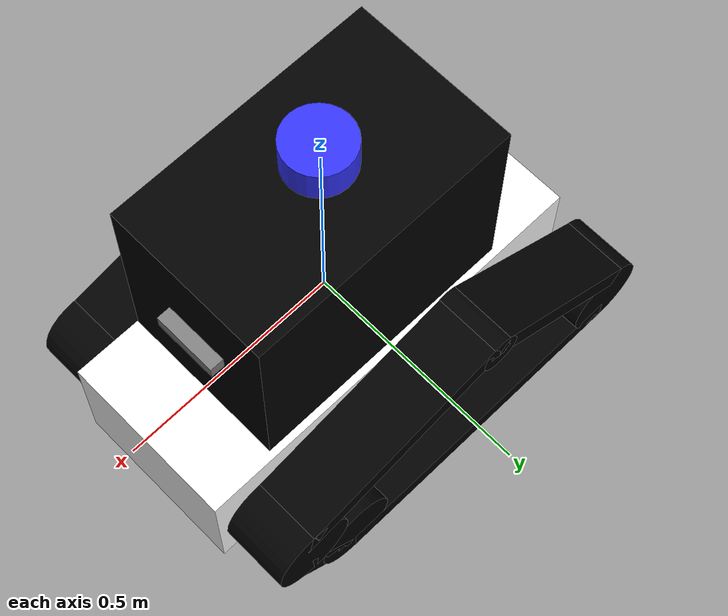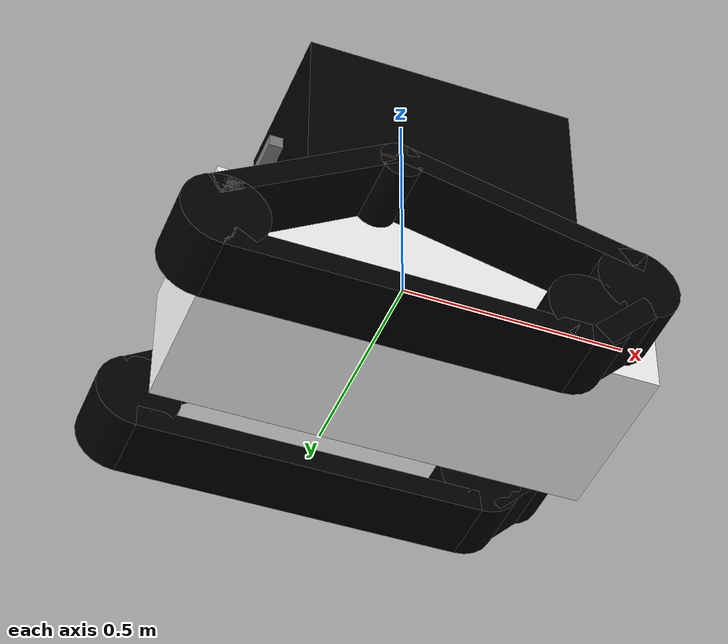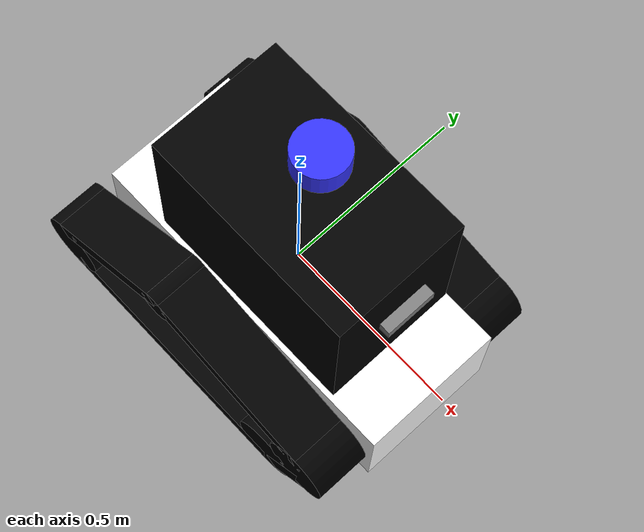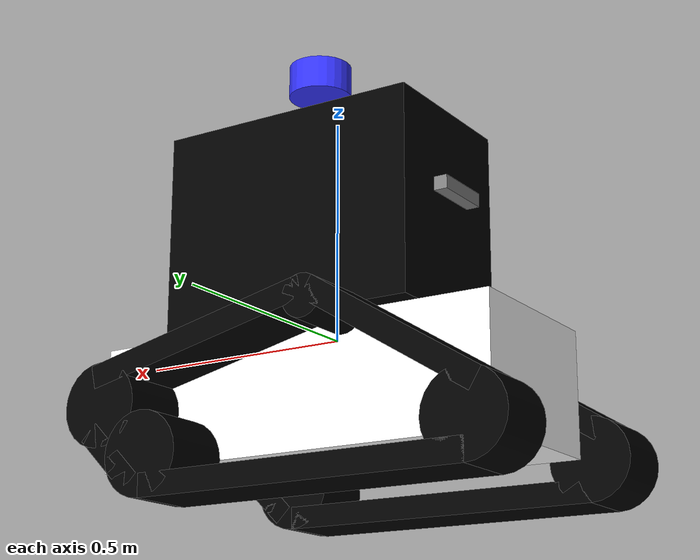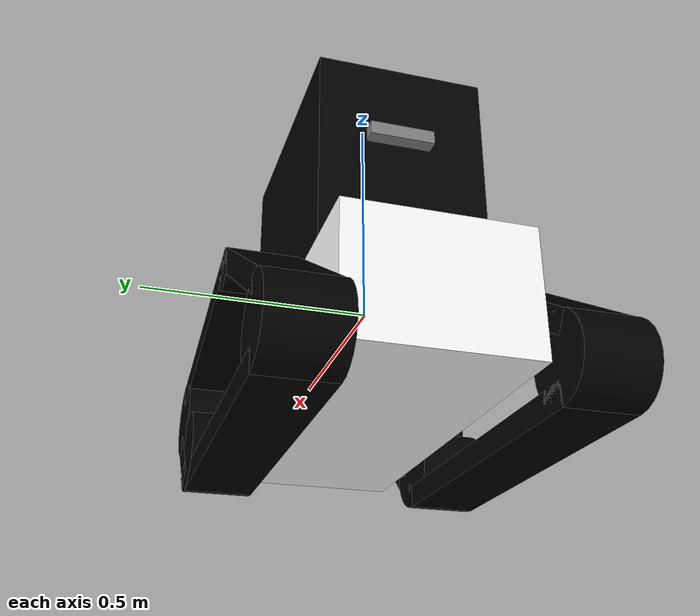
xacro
<?xml version="1.0"?>
<robot xmlns:xacro="http://www.ros.org/wiki/xacro"  name="jo">

    <xacro:include filename="robot_core.xacro" />
    <xacro:include filename="track.xacro" />

    <xacro:track side="left"/>
    <xacro:track side="right"/>

    <xacro:include filename="velodyne.xacro" />
    <xacro:include filename="front_depth.xacro" />
    <xacro:include filename="back_depth.xacro" />
    <xacro:include filename="imu.xacro" />

    <!-- TrackedVehicle instantiation; the track links need to be instantiated separately -->
    <gazebo>
        <plugin filename="gz-sim-tracked-vehicle-system"
                name="gz::sim::systems::TrackedVehicle">

            <!-- Left track links -->
            <left_track>
                <link>left_bottom_belt</link>
            </left_track>
            <left_track>
                <link>front_left_roller</link>
            </left_track>
            <left_track>
                <link>back_left_roller</link>
            </left_track>
            <left_track>
                <link>left_front_bottom_belt</link>
            </left_track>
            <!-- Right track links -->
            <right_track>
                <link>right_bottom_belt</link>
            </right_track>
            <right_track>
                <link>back_right_roller</link>
            </right_track>
            <right_track>
                <link>front_right_roller</link>
            </right_track>
            <right_track>
                <link>right_front_bottom_belt</link>
            </right_track>

            <!-- ODOMETRY SEEMS TO NOT WORK FINE -->
            <!-- Distance between track centerlines -->
            <tracks_separation>${chassis_width}</tracks_separation>
            <!-- Used for odometry moment-arm calculation -->
            <track_height>${back_roller_radius*2}</track_height>
            <steering_efficiency>0.5</steering_efficiency>
            <linear_velocity>
                <max_velocity>2.0</max_velocity>
                <max_acceleration>5.0</max_acceleration>
            </linear_velocity>
            <angular_velocity>
                <max_velocity>1.5</max_velocity>
                <max_acceleration>2.5</max_acceleration>
            </angular_velocity>
            <frame_id>odom</frame_id>
            <child_frame_id>base_link</child_frame_id>
            <odom_publish_frequency>50</odom_publish_frequency>
        </plugin>
    </gazebo>

</robot>

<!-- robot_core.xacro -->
<robot xmlns:xacro="http://www.ros.org/wiki/xacro">

    <xacro:include filename="inertial_macros.xacro"/>

    <xacro:property name="chassis_length" value="0.94"/>
    <xacro:property name="chassis_width" value="0.39"/>
    <xacro:property name="chassis_height" value="0.273"/>
    <xacro:property name="chassis_mass" value="140.0"/>

    <xacro:property name="front_chassis2rack" value="0.15"/>

    <xacro:property name="rack_length" value="0.6"/>
    <xacro:property name="rack_width" value="0.37"/>
    <xacro:property name="rack_height" value="0.45"/>
    <xacro:property name="rack_mass" value="0.0"/>

    <!-- Lateral offset: center of track from robot centerline -->
    <xacro:property name="track_offset_y" value="${chassis_width/2 + track_width/2}"/>
    <!-- Z: bottom of chassis minus half track height = track center sits at ground level -->
    <xacro:property name="track_offset_z" value="${-chassis_height/2 - track_height/2}"/>

    <!-- Rack -->
    <xacro:property name="rack_mass" value="0.1"/>

    <material name="white">  <color rgba="1 1 1 1"/>         </material>
    <material name="orange"> <color rgba="1 0.3 0.1 1"/>     </material>
    <material name="blue">   <color rgba="0.2 0.2 1 1"/>     </material>
    <material name="black">  <color rgba="0 0 0 1"/>         </material>
    <material name="black_t"><color rgba="0 0 0 0.9"/>       </material>
    <material name="red">    <color rgba="1 0 0 1"/>         </material>
    <material name="gray">    <color rgba="0.5 0.5 0.5 1"/>         </material>

    <!-- ═══════════════════════════════════════════
         BASE LINK
    ═══════════════════════════════════════════ -->
    <link name="base_link"/>

    <joint name="base_footprint_joint" type="fixed">
        <parent link="base_link"/>
        <child link="base_footprint"/>
        <origin xyz="0 0 ${-chassis_height - 0.1}" rpy="0 0 0"/>
    </joint>
    <link name="base_footprint"/>

    <!-- ═══════════════════════════════════════════
         CHASSIS
    ═══════════════════════════════════════════ -->
    <joint name="chassis_joint" type="fixed">
        <parent link="base_link"/>
        <child link="chassis"/>
        <origin xyz="${-chassis_length/2} 0 0"/>
    </joint>

    <link name="chassis">
        <visual>
            <origin xyz="${chassis_length/2} 0 ${-chassis_height/2}"/>
            <geometry>
                <box size="${chassis_length} ${chassis_width} ${chassis_height}"/>
            </geometry>
            <material name="white"/>
        </visual>
        <collision>
            <origin xyz="${chassis_length/2} 0 ${-chassis_height/2}"/>
            <geometry>
                <box size="${chassis_length} ${chassis_width} ${chassis_height}"/>
            </geometry>
        </collision>
        <xacro:inertial_box mass="${chassis_mass}"
                            x="${chassis_length}" y="${chassis_width}" z="${chassis_height}">
            <origin xyz="${chassis_length/2} 0 ${-chassis_height/2}" rpy="0 0 0"/>
        </xacro:inertial_box>
    </link>
    <gazebo reference="chassis">
        <material>Gazebo/White</material>
    </gazebo>

    <!-- ═══════════════════════════════════════════
         RACK
    ═══════════════════════════════════════════ -->
    <joint name="base2rack" type="fixed">
        <parent link="base_link"/>
        <child link="rack"/>
        <origin xyz="${-rack_length/2 - front_chassis2rack + chassis_length/2} 0 ${rack_height/2 + 0.02}"/>
    </joint>

    <link name="rack">
        <visual>
            <origin xyz="0 0 0"/>
            <geometry>
                <box size="${rack_length} ${rack_width} ${rack_height}"/>
            </geometry>
            <material name="black_t"/>
        </visual>
        <collision>
            <origin xyz="0 0 0"/>
            <geometry>
                <box size="${rack_length} ${rack_width} ${rack_height}"/>
            </geometry>
        </collision>
        <xacro:inertial_box mass="${rack_mass}"
                            x="${rack_length}" y="${rack_width}" z="${rack_height}">
            <origin xyz="0 0 0" rpy="0 0 0"/>
        </xacro:inertial_box>
    </link>

</robot>

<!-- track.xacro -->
<robot xmlns:xacro="http://ros.org/wiki/xacro">

    <xacro:property name="PI" value="3.141592" />
    <xacro:property name="track_width" value="0.15" />
    <xacro:property name="front_roller_radius" value="0.09" />
    <xacro:property name="front_upper_roller_radius" value="0.09" />
    <xacro:property name="upper_roller_radius" value="0.045" />
    <xacro:property name="back_roller_radius" value="0.09" />
    <xacro:property name="back2front_length" value="0.74" />
    <xacro:property name="front2upper_roller_length" value="0.16" />
    <xacro:property name="belt_thickness" value="0.05" />
    <xacro:property name="back2top_roller_x" value="0.35" />
    <xacro:property name="back2top_roller_y" value="0.27" />
    <xacro:property name="back2top_length" value="0.43" />
    <xacro:property name="top2front_upper_length" value="0.53" />
    <xacro:property name="back_roller2chassis" value="0.11" />

    <xacro:macro name="track" params="side">

        <link name="back_${side}_roller">
            <visual>
                <origin xyz="0 0 0" rpy="${-pi/2} ${-pi/2} 0"/>
                <geometry>
                    <cylinder radius="${back_roller_radius}" length="${track_width}"/>
                </geometry>
                <material name="black"/>
            </visual>
            <collision>
                <origin xyz="0 0 0" rpy="${-pi/2} ${-pi/2} 0"/>
                <geometry>
                    <cylinder radius="${back_roller_radius}" length="${track_width}"/>
                </geometry>
                <material name="orange"/>
            </collision>
            <xacro:inertial_cylinder mass="0.01" radius="${back_roller_radius}" length="${track_width}">
                    <origin xyz="0 0 0" rpy="${-pi/2} ${-pi/2} 0"/>
            </xacro:inertial_cylinder>
        </link>

        <joint name="base2back_${side}_roller" type="fixed">
            <parent link="base_link"/>
            <child link="back_${side}_roller"/>
            <origin xyz="${-chassis_length/2 - back_roller2chassis + back_roller_radius} ${(track_width/2 + chassis_width/2) * (1 if side == 'left' else -1)} ${-chassis_height}" rpy="${pi/2} ${pi/2} ${pi/2}" />
        </joint>

        <link name="front_${side}_roller">
            <visual>
                <origin xyz="0 0 0" rpy="${-pi/2} 0 0"/>
                <geometry>
                    <cylinder radius="${front_roller_radius}" length="${track_width}"/>
                </geometry>
                <material name="black"/>
            </visual>
            <collision>
                <origin xyz="0 0 0" rpy="${-pi/2} 0 0"/>
                <geometry>
                    <cylinder radius="${front_roller_radius}" length="${track_width}"/>
                </geometry>
                <material name="orange"/>
            </collision>
            <xacro:inertial_cylinder mass="0.01" radius="${front_roller_radius}" length="${track_width}">
                    <origin xyz="0 0 0" rpy="${-pi/2} 0 0"/>
            </xacro:inertial_cylinder>
        </link>

        <joint name="back_${side}_roller2front_${side}_roller" type="fixed">
            <parent link="back_${side}_roller"/>
            <child link="front_${side}_roller"/>
            <origin xyz="0.0 0.0 ${back2front_length}" rpy="0 0 0" />
        </joint>

        <link name="front_${side}_upper_roller">
            <visual>
                <origin xyz="0 0 0" rpy="${-pi/2} ${-pi/4 - pi/3 - 17.7*pi/180} 0"/>
                <geometry>
                    <cylinder radius="${front_upper_roller_radius}" length="${track_width}"/>
                </geometry>
                <material name="black"/>
            </visual>
            <collision>
                <origin xyz="0 0 0" rpy="${-pi/2} ${-pi/4 - pi/3 - 17.7*pi/180} 0"/>
                <geometry>
                    <cylinder radius="${front_upper_roller_radius}" length="${track_width}"/>
                </geometry>
                <material name="orange"/>
            </collision>
        </link>

        <joint name="front_${side}_roller2front_${side}_upper_roller" type="fixed">
            <parent link="front_${side}_roller"/>
            <child link="front_${side}_upper_roller"/>
            <origin xyz="${-front2upper_roller_length * 0.7} 0.0 ${front2upper_roller_length * 0.7}" rpy="0 ${pi/4 + pi/3 + 17.7*pi/180} 0" />
        </joint>

        <link name="${side}_bottom_belt">
            <visual>
                <geometry>
                    <box size="${belt_thickness} ${track_width} ${back2front_length}"/>
                </geometry>
                <material name="black"/>
            </visual>
            <collision>
                <geometry>
                    <box size="${belt_thickness} ${track_width} ${back2front_length}"/>
                </geometry>
                <material name="orange"/>
            </collision>
            <xacro:inertial_box mass="0.01" x="${belt_thickness}" y="${track_width}" z="${back2front_length}">
                    <origin xyz="0 0 0" rpy="0 0 0"/>
            </xacro:inertial_box>
        </link>

        <joint name="back_${side}_roller2${side}_bottom_belt" type="fixed">
            <parent link="back_${side}_roller"/>
            <child link="${side}_bottom_belt"/>
            <origin xyz="0.065 0 ${back2front_length/2}" rpy="0 0 0" />
        </joint>

        <link name="${side}_front_bottom_belt">
            <visual>
                <origin xyz="0 0 0" rpy="0 ${-pi/4} 0"/>
                <geometry>
                    <box size="${belt_thickness} ${track_width} ${front2upper_roller_length}"/>
                </geometry>
                <material name="black"/>
            </visual>
            <collision>
                <origin xyz="0 0 0" rpy="0 ${-pi/4} 0"/>
                <geometry>
                    <box size="${belt_thickness} ${track_width} ${front2upper_roller_length}"/>
                </geometry>
                <material name="orange"/>
            </collision>
            <xacro:inertial_box mass="0.01" x="${belt_thickness}" y="${track_width}" z="${front2upper_roller_length}">
                    <origin xyz="0 0 0" rpy="0 ${-pi/4} 0"/>
            </xacro:inertial_box>
        </link>

        <joint name="back_${side}_roller2${side}_front_bottom_belt" type="fixed">
            <parent link="front_${side}_roller"/>
            <child link="${side}_front_bottom_belt"/>
            <origin xyz="0.0 0.0 ${front2upper_roller_length/2}" rpy="0 0 0" />
        </joint>

        <link name="${side}_top_roller">
            <visual>
                <origin xyz="0 0 0" rpy="${-pi/2} ${pi/6 + 2*pi/180} 0"/>
                <geometry>
                    <cylinder radius="${upper_roller_radius}" length="${track_width}"/>
                </geometry>
                <material name="black"/>
            </visual>
            <collision>
                <origin xyz="0 0 0" rpy="${-pi/2} ${pi/6 + 2*pi/180} 0"/>
                <geometry>
                    <cylinder radius="${upper_roller_radius}" length="${track_width}"/>
                </geometry>
                <material name="orange"/>
            </collision>
        </link>

        <joint name="back_${side}_roller2${side}_top_roller" type="fixed">
            <parent link="back_${side}_roller"/>
            <child link="${side}_top_roller"/>
            <origin xyz="${-back2top_roller_y} 0 ${back2top_roller_x}" rpy="0 ${-pi/6 - 2*pi/180} 0" />
        </joint>

        <link name="${side}_back_top_belt">
            <visual>
                <geometry>
                    <box size="${belt_thickness} ${track_width} ${back2top_length}"/>
                </geometry>
                <material name="black"/>
            </visual>
            <collision>
                <geometry>
                    <box size="${belt_thickness} ${track_width} ${back2top_length}"/>
                </geometry>
                <material name="orange"/>
            </collision>
        </link>

        <joint name="${side}_top_roller2${side}_back_top_belt" type="fixed">
            <parent link="${side}_top_roller"/>
            <child link="${side}_back_top_belt"/>
            <origin xyz="-0.02 0.0 ${-back2top_length/2}" rpy="0 0 0" />
        </joint>

        <link name="${side}_front_top_belt">
            <visual>
                <geometry>
                    <box size="${top2front_upper_length} ${track_width} ${belt_thickness}"/>
                </geometry>
                <material name="black"/>
            </visual>
            <collision>
                <geometry>
                    <box size="${top2front_upper_length} ${track_width} ${belt_thickness}"/>
                </geometry>
                <material name="orange"/>
            </collision>
        </link>

        <joint name="front_${side}_upper_roller2${side}_front_top_belt" type="fixed">
            <parent link="front_${side}_upper_roller"/>
            <child link="${side}_front_top_belt"/>
            <origin xyz="${top2front_upper_length/2} 0.0 ${belt_thickness/2 + 0.005}" rpy="0 ${-pi/9} 0" />
        </joint>

        <gazebo reference="base2back_${side}_roller">
            <preserveFixedJoint>true</preserveFixedJoint>
        </gazebo>

        <gazebo>
            <plugin filename="gz-sim-track-controller-system"
                    name="gz::sim::systems::TrackController">
                <link>back_${side}_roller</link>
                <debug>0</debug>
            </plugin>
        </gazebo>

        <gazebo reference="back_${side}_roller">
            <self_collide>false</self_collide>
        </gazebo>

        <gazebo reference="back_${side}_roller2front_${side}_roller">
            <preserveFixedJoint>true</preserveFixedJoint>
        </gazebo>

        <gazebo>
            <plugin filename="gz-sim-track-controller-system"
                    name="gz::sim::systems::TrackController">
                <link>front_${side}_roller</link>
                <debug>0</debug>
            </plugin>
        </gazebo>

        <gazebo reference="front_${side}_roller">
            <self_collide>false</self_collide>
        </gazebo>

        <gazebo reference="back_${side}_roller2${side}_bottom_belt">
            <preserveFixedJoint>true</preserveFixedJoint>
        </gazebo>

        <gazebo>
            <plugin filename="gz-sim-track-controller-system"
                    name="gz::sim::systems::TrackController">
                <link>${side}_bottom_belt</link>
                <debug>0</debug>
            </plugin>
        </gazebo>

        <gazebo reference="${side}_bottom_belt">
            <self_collide>false</self_collide>
        </gazebo>

        <gazebo reference="back_${side}_roller2${side}_front_bottom_belt">
            <preserveFixedJoint>true</preserveFixedJoint>
        </gazebo>

        <gazebo>
            <plugin filename="gz-sim-track-controller-system"
                    name="gz::sim::systems::TrackController">
                <link>${side}_front_bottom_belt</link>
                <debug>0</debug>
            </plugin>
        </gazebo>

        <gazebo reference="${side}_front_bottom_belt">
            <self_collide>false</self_collide>
        </gazebo>

    </xacro:macro>

</robot>

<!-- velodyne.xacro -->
<robot xmlns:xacro="http://ros.org/wiki/xacro">

    <xacro:property name="PI" value="3.141592" />

    <xacro:property name="b2l_x" value="0.03" />
    <xacro:property name="b2l_y" value="0.0286" />
    <xacro:property name="b2l_z" value="0.564" />
    <xacro:property name="b2l_R" value="0.0" />
    <xacro:property name="b2l_P" value="0.0" />
    <xacro:property name="b2l_Y" value="0.0" />
    <xacro:property name="lidar_mass" value="0.125" />
    <xacro:property name="lidar_len_rad" value="0.07" />
    <xacro:property name="lidar_len_h" value="0.072" />
    <xacro:include filename="$(find jo_description)/urdf/inertial_macros.xacro" />

    <xacro:macro name="lidar_sensor" params="namespace">
        <joint name="base2lidar" type="fixed">
            <parent link="base_link"/>
            <child link="velodyne"/>
            <origin xyz="${b2l_x} ${b2l_y} ${b2l_z + lidar_len_h/2}" rpy="${b2l_R} ${b2l_P} ${b2l_Y}"/>
        </joint>
        <link name="velodyne">
            <collision>
                <origin xyz="0 0 0" rpy="0 0 0"/>
                <geometry>
                    <cylinder radius="${lidar_len_rad}" length="${lidar_len_h}"/>
                </geometry>
            </collision>

            <visual>
                <origin xyz="0 0 0" rpy="0 0 0"/>
                <geometry>
                    <cylinder radius="${lidar_len_rad}" length="${lidar_len_h}"/>
                </geometry>
                <material name="blue"/>
            </visual>

            <xacro:inertial_cylinder mass="${lidar_mass}" radius="${lidar_len_rad}" length="${lidar_len_h}">
                    <origin xyz="0 0 0" rpy="0 0 0"/>
            </xacro:inertial_cylinder>

        </link>
        <gazebo reference="velodyne">
            <sensor name="RGLsensor" type="custom">
                <plugin filename="RGLServerPluginInstance" name="rgl::RGLServerPluginInstance">
                    <range>
                    <min>0.1</min>
                    <max>100</max>
                    </range>
                    <update_rate>10</update_rate>
                    <update_on_paused_sim>false</update_on_paused_sim>
                    <topic>${namespace}/velodyne_points</topic>
                    <frame>velodyne</frame>
                    <pattern_preset>Puck</pattern_preset>
                </plugin>
            </sensor>
        </gazebo>

    </xacro:macro>

    <xacro:lidar_sensor namespace=""/>

</robot>

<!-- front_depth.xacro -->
<robot xmlns:xacro="http://ros.org/wiki/xacro">

    <xacro:property name="PI" value="3.141592" />

    <xacro:property name="b2c_x" value="-0.30639" />
    <xacro:property name="b2c_y" value="0.01414" />
    <xacro:property name="b2c_z" value="0.27801" />
    <xacro:property name="b2c_R" value="0.0" />
    <xacro:property name="b2c_P" value="0.0" />
    <xacro:property name="b2c_Y" value="0.0" />
    <xacro:property name="camera_mass" value="0.125" />
    <xacro:property name="camera_height" value="0.03" />
    <xacro:property name="camera_len" value="0.14" />
    <xacro:property name="camera_depth" value="0.03" />
    <xacro:include filename="$(find jo_description)/urdf/inertial_macros.xacro" />

    <xacro:macro name="front_depth" params="namespace">
        <joint name="base2front_camera" type="fixed">
            <parent link="base_link"/>
            <child link="front_camera_link"/>
            <origin xyz="${-b2c_x + 0.03} ${b2c_y} ${b2c_z}" rpy="${b2c_R} ${b2c_P} ${b2c_Y}"/>
        </joint>
        <link name="front_camera_link">

            <visual>
                <origin xyz="0 0 0" rpy="0 ${PI/2} 0"/>
                <geometry>
                    <box size="${camera_depth} ${camera_len} ${camera_height}"/>
                </geometry>
                <material name="gray"/>
            </visual>

            <collision>
                <origin xyz="0 0 0" rpy="0 ${PI/2} 0"/>
                <geometry>
                    <box size="${camera_depth} ${camera_len} ${camera_height}"/>
                </geometry>
            </collision>

            <xacro:inertial_box mass="${camera_mass}" x="${camera_depth}" y="${camera_len}" z="${camera_height}">
                    <origin xyz="0 0 0" rpy="0 ${PI/2} 0"/>
            </xacro:inertial_box>

        </link>
        <gazebo reference="front_camera_link">
            <sensor name="front_d455" type="rgbd_camera">
                <gz_frame_id>front_camera_link</gz_frame_id>
                <always_on>true</always_on>
                <update_rate>30</update_rate>
                <visualize>true</visualize>

                <!-- RGB camera -->
                <camera name="color">
                <horizontal_fov>1.50</horizontal_fov>  <!-- ≈86 deg -->
                <image>
                    <width>640</width>
                    <height>480</height>
                    <format>R8G8B8</format>
                </image>
                <clip>
                    <near>0.1</near>
                    <far>20</far>
                </clip>
                </camera>

                <!-- Depth -->
                <depth_camera>
                <clip>
                    <near>0.35</near>
                    <far>8.0</far>
                </clip>

                </depth_camera>

                <topic>front_camera</topic>
            </sensor>
            </gazebo>

    </xacro:macro>

    <xacro:front_depth namespace=""/>

</robot>

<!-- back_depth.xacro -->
<robot xmlns:xacro="http://ros.org/wiki/xacro">

    <xacro:property name="PI" value="3.141592" />

    <xacro:property name="b2c_x" value="-0.30639" />
    <xacro:property name="b2c_y" value="0.01414" />
    <xacro:property name="b2c_z" value="0.27801" />
    <xacro:property name="b2c_R" value="0.0" />
    <xacro:property name="b2c_P" value="0.0" />
    <xacro:property name="b2c_Y" value="${PI}" />
    <xacro:property name="camera_mass" value="0.125" />
    <xacro:property name="camera_height" value="0.03" />
    <xacro:property name="camera_len" value="0.14" />
    <xacro:property name="camera_depth" value="0.03" />
    <xacro:include filename="$(find jo_description)/urdf/inertial_macros.xacro" />

    <xacro:macro name="back_depth" params="namespace">
        <joint name="base2back_camera" type="fixed">
            <parent link="base_link"/>
            <child link="back_camera_link"/>
            <origin xyz="${b2c_x} ${b2c_y} ${b2c_z}" rpy="${b2c_R} ${b2c_P} ${b2c_Y}"/>
        </joint>
        <link name="back_camera_link">

            <visual>
                <origin xyz="0 0 0" rpy="0 ${PI/2} 0"/>
                <geometry>
                    <box size="${camera_depth} ${camera_len} ${camera_height}"/>
                </geometry>
                <material name="gray"/>
            </visual>

            <collision>
                <origin xyz="0 0 0" rpy="0 ${PI/2} 0"/>
                <geometry>
                    <box size="${camera_depth} ${camera_len} ${camera_height}"/>
                </geometry>
            </collision>

            <xacro:inertial_box mass="${camera_mass}" x="${camera_depth}" y="${camera_len}" z="${camera_height}">
                    <origin xyz="0 0 0" rpy="0 ${PI/2} 0"/>
            </xacro:inertial_box>

        </link>
        <gazebo reference="back_camera_link">
            <sensor name="back_d455" type="rgbd_camera">
                <gz_frame_id>back_camera_link</gz_frame_id>
                <always_on>true</always_on>
                <update_rate>30</update_rate>
                <visualize>true</visualize>

                <!-- RGB camera -->
                <camera name="color">
                <horizontal_fov>1.50</horizontal_fov>  <!-- ≈86 deg -->
                <image>
                    <width>640</width>
                    <height>480</height>
                    <format>R8G8B8</format>
                </image>
                <clip>
                    <near>0.1</near>
                    <far>20</far>
                </clip>
                </camera>

                <!-- Depth -->
                <depth_camera>
                <clip>
                    <near>0.35</near>
                    <far>8.0</far>
                </clip>

                </depth_camera>

                <topic>back_camera</topic>
            </sensor>
            </gazebo>

    </xacro:macro>

    <xacro:back_depth namespace=""/>

</robot>

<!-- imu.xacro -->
<robot xmlns:xacro="http://ros.org/wiki/xacro">

    <xacro:property name="PI" value="3.141592" />
    <xacro:property name="b2i_x" value="0.22172" />
    <xacro:property name="b2i_y" value="0.02606" />
    <xacro:property name="b2i_z" value="0.28202" />
    <xacro:property name="b2i_R" value="0.0" />
    <xacro:property name="b2i_P" value="0.0" />
    <xacro:property name="b2i_Y" value="0.0" />
    <xacro:property name="imu_mass" value="0.01" />
    <xacro:property name="imu_len_x" value="0.05" />
    <xacro:property name="imu_len_y" value="0.05" />
    <xacro:property name="imu_len_z" value="0.05" />

    <xacro:include filename="$(find jo_description)/urdf/inertial_macros.xacro" />

    <xacro:macro name="imu_sensor" params="">
        <joint name="base2imu" type="fixed">
            <parent link="base_link"/>
            <child link="imu_link"/>
            <origin xyz="${b2i_x} ${b2i_y} ${b2i_z}" rpy="${b2i_R} ${b2i_P} ${b2i_Y}"/>
        </joint>
        <link name="imu_link">
            <visual>
                <geometry>
                    <box size="${imu_len_x} ${imu_len_y} ${imu_len_z}"/>
                </geometry>
                <material name="orange"/>

            </visual>

            <collision>
                <geometry>
                    <box size="${imu_len_x} ${imu_len_y} ${imu_len_z}"/>
                </geometry>
            </collision>

            <xacro:inertial_box mass="${imu_mass}" x="${imu_len_x}" y="${imu_len_y}" z="${imu_len_z}">
                    <origin xyz="0 0 0" rpy="0 0 0"/>
            </xacro:inertial_box>

        </link>
        <gazebo reference="imu_link">
            <sensor name="imu_sensor" type="imu">
                    <gz_frame_id>imu_link</gz_frame_id>
                    <always_on>1</always_on>
                    <update_rate>200</update_rate>
                    <visualize>true</visualize>
                    <topic>imu</topic>
                    <plugin filename="gz-sim-imu-system"
                            name="gz::sim::systems::Imu">
                    </plugin>

                    <imu>
                        <angular_velocity>
                            <x>
                                <noise type="gaussian">
                                <mean>0.0</mean>
                                <stddev>2e-4</stddev>
                                <bias_mean>0.0000075</bias_mean>
                                <bias_stddev>0.0000008</bias_stddev>
                                </noise>
                            </x>
                            <y>
                                <noise type="gaussian">
                                <mean>0.0</mean>
                                <stddev>2e-4</stddev>
                                <bias_mean>0.0000075</bias_mean>
                                <bias_stddev>0.0000008</bias_stddev>
                                </noise>
                            </y>
                            <z>
                                <noise type="gaussian">
                                <mean>0.0</mean>
                                <stddev>2e-4</stddev>
                                <bias_mean>0.0000075</bias_mean>
                                <bias_stddev>0.0000008</bias_stddev>
                                </noise>
                            </z>
                        </angular_velocity>
                        <linear_acceleration>
                            <x>
                                <noise type="gaussian">
                                <mean>0.0</mean>
                                <stddev>1.7e-2</stddev>
                                <bias_mean>0.1</bias_mean>
                                <bias_stddev>0.001</bias_stddev>
                                </noise>
                            </x>
                            <y>
                                <noise type="gaussian">
                                <mean>0.0</mean>
                                <stddev>1.7e-2</stddev>
                                <bias_mean>0.1</bias_mean>
                                <bias_stddev>0.001</bias_stddev>
                                </noise>
                            </y>
                            <z>
                                <noise type="gaussian">
                                <mean>0.0</mean>
                                <stddev>1.7e-2</stddev>
                                <bias_mean>0.1</bias_mean>
                                <bias_stddev>0.001</bias_stddev>
                                </noise>
                            </z>
                        </linear_acceleration>
                    </imu>
                </sensor>
        </gazebo>
    </xacro:macro>

    <xacro:imu_sensor/>

</robot>
